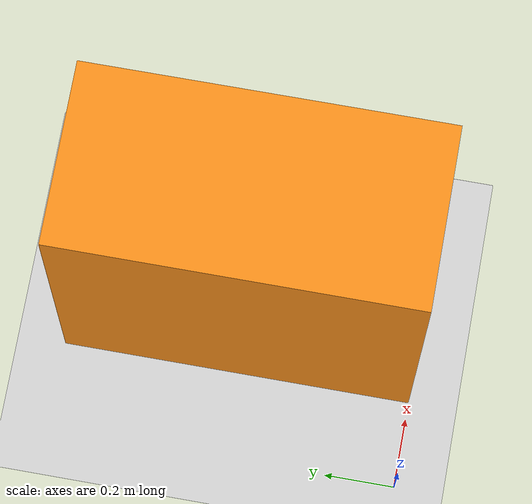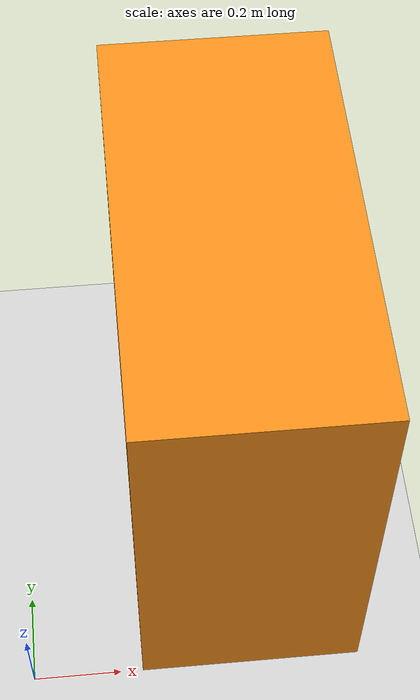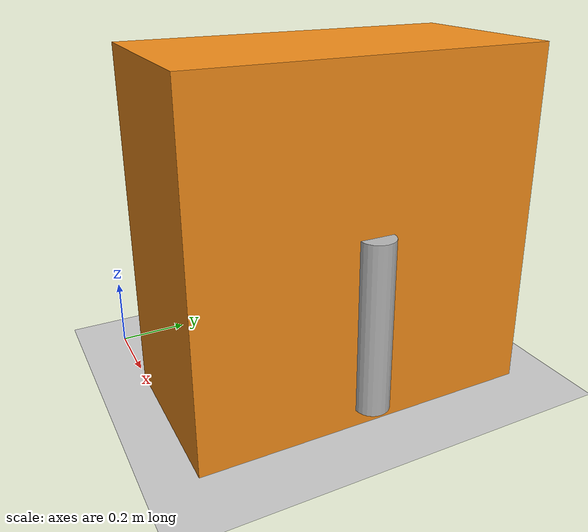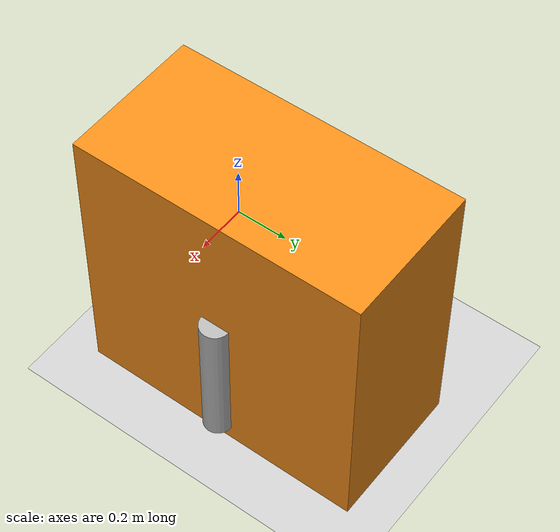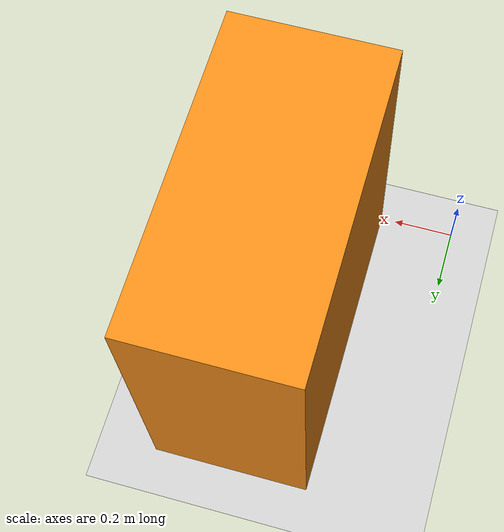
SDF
<?xml version="1.0" ?>
<sdf version="1.5">
  <world name="default">
    <physics type="ode">
      <gravity>0 0 0</gravity>
    </physics>
    <include>
      <uri>model://ground_plane</uri>
    </include>

    <include>
      <uri>model://sun</uri>
    </include>

    <plugin name="SimEvents" filename="libSimEventsPlugin.so">

    <!-- Angle: must be in range -PI to PI  -->
    <event>
      <name>joint_angle</name>
      <type>joint</type>
      <model>revoluter</model>
      <joint>my_joint</joint>
      <range>
        <type>normalized_angle</type>
        <min>1.55</min>
        <max>1.70</max>
      </range>
    </event>

    <!-- Velocity -->
    <event>
      <name>joint_velocity</name>
      <type>joint</type>
      <model>revoluter</model>
      <joint>my_joint</joint>
      <range>
        <type>velocity</type>
        <min>3</min>
        <max>3.3</max>
      </range>
    </event>

    <!-- Applied Force -->
    <event>
      <name>joint_force</name>
      <type>joint</type>
      <model>revoluter</model>
      <joint>my_joint</joint>
      <type>applied_force</type>
      <range>
        <type>applied_force</type>
        <min>3</min>
        <max>3.3</max>
      </range>
    </event>

    <!-- Close the plugin element  -->
    </plugin>

    <model name='revoluter'>
        <pose>0.5 0.5 0.5 0 0 0</pose>
        <link name='base'>
        <pose>0 0 0 0 -0 0</pose>
          <visual name='visual'>
            <geometry>
              <box>
                <size>0.5 1 1</size>
              </box>
            </geometry>
            <material>
              <script>
                <uri>file://media/materials/scripts/gazebo.material</uri>
                <name>Gazebo/Orange</name>
              </script>
            </material>
          </visual>
          <collision name='collision'>
            <geometry>
              <box>
                <size>0.5 1 1</size>
              </box>
            </geometry>
          </collision>
        </link>
        <link name='needle'>
          <pose>0.25 0 0 0 -0 0</pose>
          <visual name='visual'>
            <pose>0 0 -0.2 0 -0 0</pose>
            <geometry>
              <cylinder>
                <radius>0.05</radius>
                <length>0.5</length>
              </cylinder>
            </geometry>
          </visual>

          <collision name='collision'>
            <pose>0 0 -0.2 0 -0 0</pose>
            <geometry>
              <cylinder>
                <radius>0.05</radius>
                <length>0.5</length>
              </cylinder>
            </geometry>
           </collision>
        </link>

        <joint name='my_joint' type='revolute'>
          <parent>base</parent>
          <child>needle</child>

          <pose>0 0 0 0 0 0</pose>
          <axis>
            <xyz>1 0 0</xyz>
          </axis>
        </joint>

        <!-- this joint keeps the model from moving around -->
        <joint name ='fix' type='fixed'>
          <parent>world</parent>
          <child>base</child>
        </joint>

    </model>

  </world>
</sdf>
